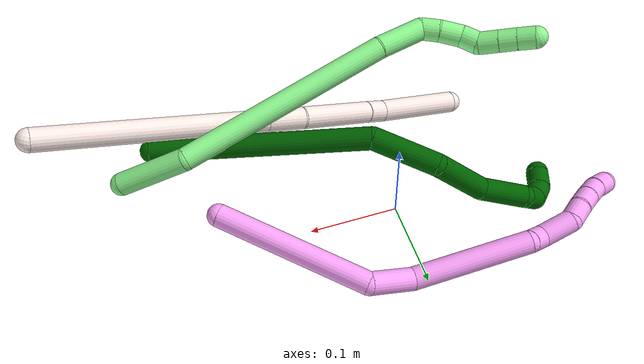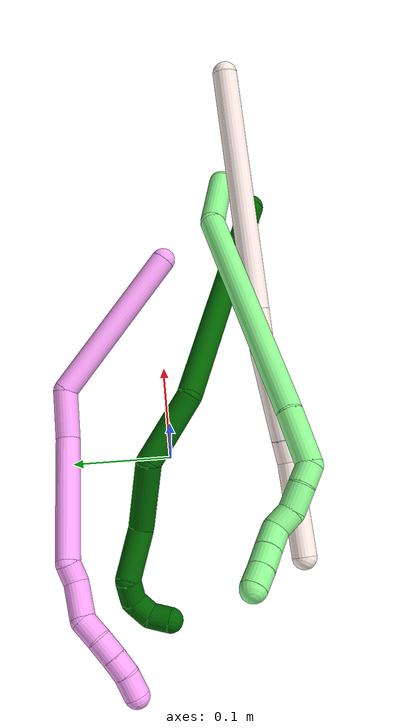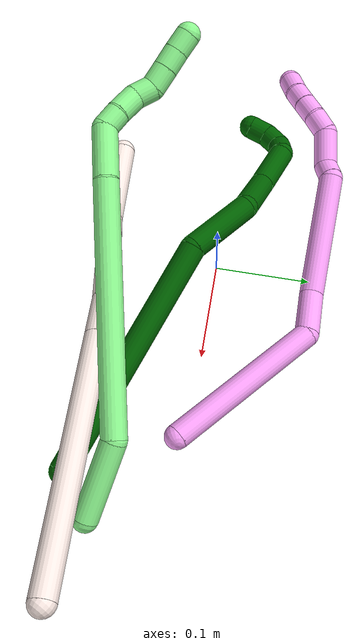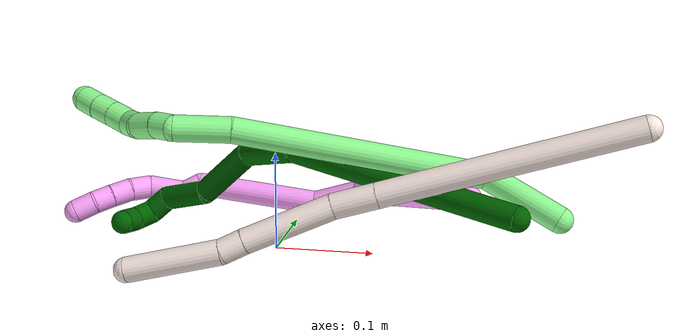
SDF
<sdf version="1.7">
 <world name="default">
  <model name="4">
   <static>0</static>
   <link name="4">
    <collision name="collision-cylinder-e_1_1_4">
     <pose>0.020566 -0.071524 0.042304 1.03668 0.242614 0.138837</pose>
     <geometry><cylinder><radius>0.0125</radius><length>0.171211</length></cylinder></geometry>
     <surface>
      <friction><ode><mu>1.16</mu><mu2>1.16</mu2><slip1>0</slip1><slip2>0</slip2></ode></friction>
      <contact><ode><kp>1e+06</kp><kd>1</kd><max_vel>0</max_vel><min_depth>0.001</min_depth></ode></contact>
     </surface>
    </collision>
    <visual name="visual-cylinder-e_1_1_4">
     <pose>0.020566 -0.071524 0.042304 1.03668 0.242614 0.138837</pose>
     <geometry><cylinder><radius>0.0125</radius><length>0.171211</length></cylinder></geometry>
     <material><ambient>1 0.65098 0.996078 1</ambient></material>
    </visual>
    <collision name="collision-cylinder-e_2_4_5">
     <pose>0.038539 -0.153543 0.107289 0.433327 -0.103378 -0.022775</pose>
     <geometry><cylinder><radius>0.0125</radius><length>0.050251</length></cylinder></geometry>
     <surface>
      <friction><ode><mu>1.16</mu><mu2>1.16</mu2><slip1>0</slip1><slip2>0</slip2></ode></friction>
      <contact><ode><kp>1e+06</kp><kd>1</kd><max_vel>0</max_vel><min_depth>0.001</min_depth></ode></contact>
     </surface>
    </collision>
    <visual name="visual-cylinder-e_2_4_5">
     <pose>0.038539 -0.153543 0.107289 0.433327 -0.103378 -0.022775</pose>
     <geometry><cylinder><radius>0.0125</radius><length>0.050251</length></cylinder></geometry>
     <material><ambient>1 0.65098 0.996078 1</ambient></material>
    </visual>
    <collision name="collision-cylinder-e_3_5_6">
     <pose>0.009601 -0.202887 0.176178 0.699114 -0.411479 -0.151855</pose>
     <geometry><cylinder><radius>0.0125</radius><length>0.131737</length></cylinder></geometry>
     <surface>
      <friction><ode><mu>1.16</mu><mu2>1.16</mu2><slip1>0</slip1><slip2>0</slip2></ode></friction>
      <contact><ode><kp>1e+06</kp><kd>1</kd><max_vel>0</max_vel><min_depth>0.001</min_depth></ode></contact>
     </surface>
    </collision>
    <visual name="visual-cylinder-e_3_5_6">
     <pose>0.009601 -0.202887 0.176178 0.699114 -0.411479 -0.151855</pose>
     <geometry><cylinder><radius>0.0125</radius><length>0.131737</length></cylinder></geometry>
     <material><ambient>1 0.65098 0.996078 1</ambient></material>
    </visual>
    <collision name="collision-cylinder-e_4_6_7">
     <pose>-0.018452 -0.242404 0.232587 0.065193 -0.165573 -0.005411</pose>
     <geometry><cylinder><radius>0.0125</radius><length>0.020727</length></cylinder></geometry>
     <surface>
      <friction><ode><mu>1.16</mu><mu2>1.16</mu2><slip1>0</slip1><slip2>0</slip2></ode></friction>
      <contact><ode><kp>1e+06</kp><kd>1</kd><max_vel>0</max_vel><min_depth>0.001</min_depth></ode></contact>
     </surface>
    </collision>
    <visual name="visual-cylinder-e_4_6_7">
     <pose>-0.018452 -0.242404 0.232587 0.065193 -0.165573 -0.005411</pose>
     <geometry><cylinder><radius>0.0125</radius><length>0.020727</length></cylinder></geometry>
     <material><ambient>1 0.65098 0.996078 1</ambient></material>
    </visual>
    <collision name="collision-cylinder-e_5_7_8">
     <pose>-0.030581 -0.252242 0.256398 0.592988 -0.565674 -0.177109</pose>
     <geometry><cylinder><radius>0.0125</radius><length>0.038884</length></cylinder></geometry>
     <surface>
      <friction><ode><mu>1.16</mu><mu2>1.16</mu2><slip1>0</slip1><slip2>0</slip2></ode></friction>
      <contact><ode><kp>1e+06</kp><kd>1</kd><max_vel>0</max_vel><min_depth>0.001</min_depth></ode></contact>
     </surface>
    </collision>
    <visual name="visual-cylinder-e_5_7_8">
     <pose>-0.030581 -0.252242 0.256398 0.592988 -0.565674 -0.177109</pose>
     <geometry><cylinder><radius>0.0125</radius><length>0.038884</length></cylinder></geometry>
     <material><ambient>1 0.65098 0.996078 1</ambient></material>
    </visual>
    <collision name="collision-cylinder-e_6_8_9">
     <pose>-0.047939 -0.260735 0.279189 -0.073879 -0.645871 0.024734</pose>
     <geometry><cylinder><radius>0.0125</radius><length>0.023055</length></cylinder></geometry>
     <surface>
      <friction><ode><mu>1.16</mu><mu2>1.16</mu2><slip1>0</slip1><slip2>0</slip2></ode></friction>
      <contact><ode><kp>1e+06</kp><kd>1</kd><max_vel>0</max_vel><min_depth>0.001</min_depth></ode></contact>
     </surface>
    </collision>
    <visual name="visual-cylinder-e_6_8_9">
     <pose>-0.047939 -0.260735 0.279189 -0.073879 -0.645871 0.024734</pose>
     <geometry><cylinder><radius>0.0125</radius><length>0.023055</length></cylinder></geometry>
     <material><ambient>1 0.65098 0.996078 1</ambient></material>
    </visual>
    <collision name="collision-cylinder-e_7_9_10">
     <pose>-0.059776 -0.258967 0.297999 -0.11256 -0.468054 0.02686</pose>
     <geometry><cylinder><radius>0.0125</radius><length>0.021717</length></cylinder></geometry>
     <surface>
      <friction><ode><mu>1.16</mu><mu2>1.16</mu2><slip1>0</slip1><slip2>0</slip2></ode></friction>
      <contact><ode><kp>1e+06</kp><kd>1</kd><max_vel>0</max_vel><min_depth>0.001</min_depth></ode></contact>
     </surface>
    </collision>
    <visual name="visual-cylinder-e_7_9_10">
     <pose>-0.059776 -0.258967 0.297999 -0.11256 -0.468054 0.02686</pose>
     <geometry><cylinder><radius>0.0125</radius><length>0.021717</length></cylinder></geometry>
     <material><ambient>1 0.65098 0.996078 1</ambient></material>
    </visual>
    <collision name="collision-cylinder-e_8_10_11">
     <pose>-0.068603 -0.257053 0.316859 -0.089147 -0.400895 0.018124</pose>
     <geometry><cylinder><radius>0.0125</radius><length>0.020132</length></cylinder></geometry>
     <surface>
      <friction><ode><mu>1.16</mu><mu2>1.16</mu2><slip1>0</slip1><slip2>0</slip2></ode></friction>
      <contact><ode><kp>1e+06</kp><kd>1</kd><max_vel>0</max_vel><min_depth>0.001</min_depth></ode></contact>
     </surface>
    </collision>
    <visual name="visual-cylinder-e_8_10_11">
     <pose>-0.068603 -0.257053 0.316859 -0.089147 -0.400895 0.018124</pose>
     <geometry><cylinder><radius>0.0125</radius><length>0.020132</length></cylinder></geometry>
     <material><ambient>1 0.65098 0.996078 1</ambient></material>
    </visual>
    <collision name="collision-cylinder-e_9_11_2">
     <pose>-0.075013 -0.25656 0.336949 0.030516 -0.224602 -0.003442</pose>
     <geometry><cylinder><radius>0.0125</radius><length>0.022288</length></cylinder></geometry>
     <surface>
      <friction><ode><mu>1.16</mu><mu2>1.16</mu2><slip1>0</slip1><slip2>0</slip2></ode></friction>
      <contact><ode><kp>1e+06</kp><kd>1</kd><max_vel>0</max_vel><min_depth>0.001</min_depth></ode></contact>
     </surface>
    </collision>
    <visual name="visual-cylinder-e_9_11_2">
     <pose>-0.075013 -0.25656 0.336949 0.030516 -0.224602 -0.003442</pose>
     <geometry><cylinder><radius>0.0125</radius><length>0.022288</length></cylinder></geometry>
     <material><ambient>1 0.65098 0.996078 1</ambient></material>
    </visual>
    <collision name="collision-sphere-2">
     <pose>-0.077495 -0.256891 0.347808 0 -0 0</pose>
     <geometry><sphere><radius>0.0125</radius></sphere></geometry>
     <surface>
      <friction><ode><mu>1.16</mu><mu2>1.16</mu2><slip1>0</slip1><slip2>0</slip2></ode></friction>
      <contact><ode><kp>1e+06</kp><kd>1</kd><max_vel>0</max_vel><min_depth>0.001</min_depth></ode></contact>
     </surface>
    </collision>
    <visual name="visual-sphere-2">
     <pose>-0.077495 -0.256891 0.347808 0 -0 0</pose>
     <geometry><sphere><radius>0.0125</radius></sphere></geometry>
     <material><ambient>1 0.65098 0.996078 1</ambient></material>
    </visual>
    <collision name="collision-sphere-11">
     <pose>-0.072531 -0.256228 0.32609 0 -0 0</pose>
     <geometry><sphere><radius>0.0125</radius></sphere></geometry>
     <surface>
      <friction><ode><mu>1.16</mu><mu2>1.16</mu2><slip1>0</slip1><slip2>0</slip2></ode></friction>
      <contact><ode><kp>1e+06</kp><kd>1</kd><max_vel>0</max_vel><min_depth>0.001</min_depth></ode></contact>
     </surface>
    </collision>
    <visual name="visual-sphere-11">
     <pose>-0.072531 -0.256228 0.32609 0 -0 0</pose>
     <geometry><sphere><radius>0.0125</radius></sphere></geometry>
     <material><ambient>1 0.65098 0.996078 1</ambient></material>
    </visual>
    <collision name="collision-sphere-10">
     <pose>-0.064675 -0.257878 0.307628 0 -0 0</pose>
     <geometry><sphere><radius>0.0125</radius></sphere></geometry>
     <surface>
      <friction><ode><mu>1.16</mu><mu2>1.16</mu2><slip1>0</slip1><slip2>0</slip2></ode></friction>
      <contact><ode><kp>1e+06</kp><kd>1</kd><max_vel>0</max_vel><min_depth>0.001</min_depth></ode></contact>
     </surface>
    </collision>
    <visual name="visual-sphere-10">
     <pose>-0.064675 -0.257878 0.307628 0 -0 0</pose>
     <geometry><sphere><radius>0.0125</radius></sphere></geometry>
     <material><ambient>1 0.65098 0.996078 1</ambient></material>
    </visual>
    <collision name="collision-sphere-9">
     <pose>-0.054878 -0.260055 0.28837 0 -0 0</pose>
     <geometry><sphere><radius>0.0125</radius></sphere></geometry>
     <surface>
      <friction><ode><mu>1.16</mu><mu2>1.16</mu2><slip1>0</slip1><slip2>0</slip2></ode></friction>
      <contact><ode><kp>1e+06</kp><kd>1</kd><max_vel>0</max_vel><min_depth>0.001</min_depth></ode></contact>
     </surface>
    </collision>
    <visual name="visual-sphere-9">
     <pose>-0.054878 -0.260055 0.28837 0 -0 0</pose>
     <geometry><sphere><radius>0.0125</radius></sphere></geometry>
     <material><ambient>1 0.65098 0.996078 1</ambient></material>
    </visual>
    <collision name="collision-sphere-4">
     <pose>0.041132 -0.143049 0.084607 0 -0 0</pose>
     <geometry><sphere><radius>0.0125</radius></sphere></geometry>
     <surface>
      <friction><ode><mu>1.16</mu><mu2>1.16</mu2><slip1>0</slip1><slip2>0</slip2></ode></friction>
      <contact><ode><kp>1e+06</kp><kd>1</kd><max_vel>0</max_vel><min_depth>0.001</min_depth></ode></contact>
     </surface>
    </collision>
    <visual name="visual-sphere-4">
     <pose>0.041132 -0.143049 0.084607 0 -0 0</pose>
     <geometry><sphere><radius>0.0125</radius></sphere></geometry>
     <material><ambient>1 0.65098 0.996078 1</ambient></material>
    </visual>
    <collision name="collision-sphere-1">
     <geometry><sphere><radius>0.0125</radius></sphere></geometry>
     <surface>
      <friction><ode><mu>1.16</mu><mu2>1.16</mu2><slip1>0</slip1><slip2>0</slip2></ode></friction>
      <contact><ode><kp>1e+06</kp><kd>1</kd><max_vel>0</max_vel><min_depth>0.001</min_depth></ode></contact>
     </surface>
    </collision>
    <visual name="visual-sphere-1">
     <geometry><sphere><radius>0.0125</radius></sphere></geometry>
     <material><ambient>1 0.65098 0.996078 1</ambient></material>
    </visual>
    <collision name="collision-sphere-8">
     <pose>-0.041001 -0.261414 0.270009 0 -0 0</pose>
     <geometry><sphere><radius>0.0125</radius></sphere></geometry>
     <surface>
      <friction><ode><mu>1.16</mu><mu2>1.16</mu2><slip1>0</slip1><slip2>0</slip2></ode></friction>
      <contact><ode><kp>1e+06</kp><kd>1</kd><max_vel>0</max_vel><min_depth>0.001</min_depth></ode></contact>
     </surface>
    </collision>
    <visual name="visual-sphere-8">
     <pose>-0.041001 -0.261414 0.270009 0 -0 0</pose>
     <geometry><sphere><radius>0.0125</radius></sphere></geometry>
     <material><ambient>1 0.65098 0.996078 1</ambient></material>
    </visual>
    <collision name="collision-sphere-5">
     <pose>0.035946 -0.164036 0.12997 0 -0 0</pose>
     <geometry><sphere><radius>0.0125</radius></sphere></geometry>
     <surface>
      <friction><ode><mu>1.16</mu><mu2>1.16</mu2><slip1>0</slip1><slip2>0</slip2></ode></friction>
      <contact><ode><kp>1e+06</kp><kd>1</kd><max_vel>0</max_vel><min_depth>0.001</min_depth></ode></contact>
     </surface>
    </collision>
    <visual name="visual-sphere-5">
     <pose>0.035946 -0.164036 0.12997 0 -0 0</pose>
     <geometry><sphere><radius>0.0125</radius></sphere></geometry>
     <material><ambient>1 0.65098 0.996078 1</ambient></material>
    </visual>
    <collision name="collision-sphere-6">
     <pose>-0.016744 -0.241738 0.222387 0 -0 0</pose>
     <geometry><sphere><radius>0.0125</radius></sphere></geometry>
     <surface>
      <friction><ode><mu>1.16</mu><mu2>1.16</mu2><slip1>0</slip1><slip2>0</slip2></ode></friction>
      <contact><ode><kp>1e+06</kp><kd>1</kd><max_vel>0</max_vel><min_depth>0.001</min_depth></ode></contact>
     </surface>
    </collision>
    <visual name="visual-sphere-6">
     <pose>-0.016744 -0.241738 0.222387 0 -0 0</pose>
     <geometry><sphere><radius>0.0125</radius></sphere></geometry>
     <material><ambient>1 0.65098 0.996078 1</ambient></material>
    </visual>
    <collision name="collision-sphere-7">
     <pose>-0.02016 -0.243069 0.242787 0 -0 0</pose>
     <geometry><sphere><radius>0.0125</radius></sphere></geometry>
     <surface>
      <friction><ode><mu>1.16</mu><mu2>1.16</mu2><slip1>0</slip1><slip2>0</slip2></ode></friction>
      <contact><ode><kp>1e+06</kp><kd>1</kd><max_vel>0</max_vel><min_depth>0.001</min_depth></ode></contact>
     </surface>
    </collision>
    <visual name="visual-sphere-7">
     <pose>-0.02016 -0.243069 0.242787 0 -0 0</pose>
     <geometry><sphere><radius>0.0125</radius></sphere></geometry>
     <material><ambient>1 0.65098 0.996078 1</ambient></material>
    </visual>
    <inertial>
     <pose>-0.000611 -0.168099 0.154861 0 -0 0</pose>
     <mass>0.5</mass>
     <inertia>
      <ixx>0.000634</ixx>
      <ixy>0</ixy>
      <ixz>0</ixz>
      <iyy>0.000416</iyy>
      <iyz>0</iyz>
      <izz>0.00049</izz>
     </inertia>
    </inertial>
   </link>
   <pose>0.196585 -0.007255 0.064909 -2.60204 0.842058 1.02569</pose>
  </model>
  <model name="6">
   <static>0</static>
   <link name="6">
    <collision name="collision-cylinder-e_1_1_4">
     <pose>-0.009968 0.037699 0.113872 -0.319708 -0.082908 0.013375</pose>
     <geometry><cylinder><radius>0.0125</radius><length>0.240726</length></cylinder></geometry>
     <surface>
      <friction><ode><mu>1.16</mu><mu2>1.16</mu2><slip1>0</slip1><slip2>0</slip2></ode></friction>
      <contact><ode><kp>1e+06</kp><kd>1</kd><max_vel>0</max_vel><min_depth>0.001</min_depth></ode></contact>
     </surface>
    </collision>
    <visual name="visual-cylinder-e_1_1_4">
     <pose>-0.009968 0.037699 0.113872 -0.319708 -0.082908 0.013375</pose>
     <geometry><cylinder><radius>0.0125</radius><length>0.240726</length></cylinder></geometry>
     <material><ambient>0 0.392157 0.003922 1</ambient></material>
    </visual>
    <collision name="collision-cylinder-e_2_4_5">
     <pose>-0.025748 0.100971 0.253809 -0.775852 -0.157848 0.064614</pose>
     <geometry><cylinder><radius>0.0125</radius><length>0.073951</length></cylinder></geometry>
     <surface>
      <friction><ode><mu>1.16</mu><mu2>1.16</mu2><slip1>0</slip1><slip2>0</slip2></ode></friction>
      <contact><ode><kp>1e+06</kp><kd>1</kd><max_vel>0</max_vel><min_depth>0.001</min_depth></ode></contact>
     </surface>
    </collision>
    <visual name="visual-cylinder-e_2_4_5">
     <pose>-0.025748 0.100971 0.253809 -0.775852 -0.157848 0.064614</pose>
     <geometry><cylinder><radius>0.0125</radius><length>0.073951</length></cylinder></geometry>
     <material><ambient>0 0.392157 0.003922 1</ambient></material>
    </visual>
    <collision name="collision-cylinder-e_3_5_6">
     <pose>-0.05533 0.147494 0.294082 -0.974897 -0.753978 0.413766</pose>
     <geometry><cylinder><radius>0.0125</radius><length>0.069448</length></cylinder></geometry>
     <surface>
      <friction><ode><mu>1.16</mu><mu2>1.16</mu2><slip1>0</slip1><slip2>0</slip2></ode></friction>
      <contact><ode><kp>1e+06</kp><kd>1</kd><max_vel>0</max_vel><min_depth>0.001</min_depth></ode></contact>
     </surface>
    </collision>
    <visual name="visual-cylinder-e_3_5_6">
     <pose>-0.05533 0.147494 0.294082 -0.974897 -0.753978 0.413766</pose>
     <geometry><cylinder><radius>0.0125</radius><length>0.069448</length></cylinder></geometry>
     <material><ambient>0 0.392157 0.003922 1</ambient></material>
    </visual>
    <collision name="collision-cylinder-e_4_6_7">
     <pose>-0.088987 0.181535 0.328088 -0.584211 -0.394676 0.120102</pose>
     <geometry><cylinder><radius>0.0125</radius><length>0.051425</length></cylinder></geometry>
     <surface>
      <friction><ode><mu>1.16</mu><mu2>1.16</mu2><slip1>0</slip1><slip2>0</slip2></ode></friction>
      <contact><ode><kp>1e+06</kp><kd>1</kd><max_vel>0</max_vel><min_depth>0.001</min_depth></ode></contact>
     </surface>
    </collision>
    <visual name="visual-cylinder-e_4_6_7">
     <pose>-0.088987 0.181535 0.328088 -0.584211 -0.394676 0.120102</pose>
     <geometry><cylinder><radius>0.0125</radius><length>0.051425</length></cylinder></geometry>
     <material><ambient>0 0.392157 0.003922 1</ambient></material>
    </visual>
    <collision name="collision-cylinder-e_5_7_8">
     <pose>-0.108833 0.198314 0.352297 -0.696481 -1.04728 0.413253</pose>
     <geometry><cylinder><radius>0.0125</radius><length>0.022998</length></cylinder></geometry>
     <surface>
      <friction><ode><mu>1.16</mu><mu2>1.16</mu2><slip1>0</slip1><slip2>0</slip2></ode></friction>
      <contact><ode><kp>1e+06</kp><kd>1</kd><max_vel>0</max_vel><min_depth>0.001</min_depth></ode></contact>
     </surface>
    </collision>
    <visual name="visual-cylinder-e_5_7_8">
     <pose>-0.108833 0.198314 0.352297 -0.696481 -1.04728 0.413253</pose>
     <geometry><cylinder><radius>0.0125</radius><length>0.022998</length></cylinder></geometry>
     <material><ambient>0 0.392157 0.003922 1</ambient></material>
    </visual>
    <collision name="collision-cylinder-e_6_8_9">
     <pose>-0.127574 0.198002 0.361057 0.743566 -0.978479 -0.409377</pose>
     <geometry><cylinder><radius>0.0125</radius><length>0.021171</length></cylinder></geometry>
     <surface>
      <friction><ode><mu>1.16</mu><mu2>1.16</mu2><slip1>0</slip1><slip2>0</slip2></ode></friction>
      <contact><ode><kp>1e+06</kp><kd>1</kd><max_vel>0</max_vel><min_depth>0.001</min_depth></ode></contact>
     </surface>
    </collision>
    <visual name="visual-cylinder-e_6_8_9">
     <pose>-0.127574 0.198002 0.361057 0.743566 -0.978479 -0.409377</pose>
     <geometry><cylinder><radius>0.0125</radius><length>0.021171</length></cylinder></geometry>
     <material><ambient>0 0.392157 0.003922 1</ambient></material>
    </visual>
    <collision name="collision-cylinder-e_7_9_2">
     <pose>-0.142287 0.18599 0.367268 1.34255 -0.624707 -0.502193</pose>
     <geometry><cylinder><radius>0.0125</radius><length>0.02028</length></cylinder></geometry>
     <surface>
      <friction><ode><mu>1.16</mu><mu2>1.16</mu2><slip1>0</slip1><slip2>0</slip2></ode></friction>
      <contact><ode><kp>1e+06</kp><kd>1</kd><max_vel>0</max_vel><min_depth>0.001</min_depth></ode></contact>
     </surface>
    </collision>
    <visual name="visual-cylinder-e_7_9_2">
     <pose>-0.142287 0.18599 0.367268 1.34255 -0.624707 -0.502193</pose>
     <geometry><cylinder><radius>0.0125</radius><length>0.02028</length></cylinder></geometry>
     <material><ambient>0 0.392157 0.003922 1</ambient></material>
    </visual>
    <collision name="collision-sphere-2">
     <pose>-0.148217 0.177978 0.369129 0 -0 0</pose>
     <geometry><sphere><radius>0.0125</radius></sphere></geometry>
     <surface>
      <friction><ode><mu>1.16</mu><mu2>1.16</mu2><slip1>0</slip1><slip2>0</slip2></ode></friction>
      <contact><ode><kp>1e+06</kp><kd>1</kd><max_vel>0</max_vel><min_depth>0.001</min_depth></ode></contact>
     </surface>
    </collision>
    <visual name="visual-sphere-2">
     <pose>-0.148217 0.177978 0.369129 0 -0 0</pose>
     <geometry><sphere><radius>0.0125</radius></sphere></geometry>
     <material><ambient>0 0.392157 0.003922 1</ambient></material>
    </visual>
    <collision name="collision-sphere-9">
     <pose>-0.136356 0.194001 0.365407 0 -0 0</pose>
     <geometry><sphere><radius>0.0125</radius></sphere></geometry>
     <surface>
      <friction><ode><mu>1.16</mu><mu2>1.16</mu2><slip1>0</slip1><slip2>0</slip2></ode></friction>
      <contact><ode><kp>1e+06</kp><kd>1</kd><max_vel>0</max_vel><min_depth>0.001</min_depth></ode></contact>
     </surface>
    </collision>
    <visual name="visual-sphere-9">
     <pose>-0.136356 0.194001 0.365407 0 -0 0</pose>
     <geometry><sphere><radius>0.0125</radius></sphere></geometry>
     <material><ambient>0 0.392157 0.003922 1</ambient></material>
    </visual>
    <collision name="collision-sphere-4">
     <pose>-0.019935 0.075398 0.227743 0 -0 0</pose>
     <geometry><sphere><radius>0.0125</radius></sphere></geometry>
     <surface>
      <friction><ode><mu>1.16</mu><mu2>1.16</mu2><slip1>0</slip1><slip2>0</slip2></ode></friction>
      <contact><ode><kp>1e+06</kp><kd>1</kd><max_vel>0</max_vel><min_depth>0.001</min_depth></ode></contact>
     </surface>
    </collision>
    <visual name="visual-sphere-4">
     <pose>-0.019935 0.075398 0.227743 0 -0 0</pose>
     <geometry><sphere><radius>0.0125</radius></sphere></geometry>
     <material><ambient>0 0.392157 0.003922 1</ambient></material>
    </visual>
    <collision name="collision-sphere-1">
     <geometry><sphere><radius>0.0125</radius></sphere></geometry>
     <surface>
      <friction><ode><mu>1.16</mu><mu2>1.16</mu2><slip1>0</slip1><slip2>0</slip2></ode></friction>
      <contact><ode><kp>1e+06</kp><kd>1</kd><max_vel>0</max_vel><min_depth>0.001</min_depth></ode></contact>
     </surface>
    </collision>
    <visual name="visual-sphere-1">
     <geometry><sphere><radius>0.0125</radius></sphere></geometry>
     <material><ambient>0 0.392157 0.003922 1</ambient></material>
    </visual>
    <collision name="collision-sphere-8">
     <pose>-0.118792 0.202002 0.356707 0 -0 0</pose>
     <geometry><sphere><radius>0.0125</radius></sphere></geometry>
     <surface>
      <friction><ode><mu>1.16</mu><mu2>1.16</mu2><slip1>0</slip1><slip2>0</slip2></ode></friction>
      <contact><ode><kp>1e+06</kp><kd>1</kd><max_vel>0</max_vel><min_depth>0.001</min_depth></ode></contact>
     </surface>
    </collision>
    <visual name="visual-sphere-8">
     <pose>-0.118792 0.202002 0.356707 0 -0 0</pose>
     <geometry><sphere><radius>0.0125</radius></sphere></geometry>
     <material><ambient>0 0.392157 0.003922 1</ambient></material>
    </visual>
    <collision name="collision-sphere-5">
     <pose>-0.03156 0.126544 0.279875 0 -0 0</pose>
     <geometry><sphere><radius>0.0125</radius></sphere></geometry>
     <surface>
      <friction><ode><mu>1.16</mu><mu2>1.16</mu2><slip1>0</slip1><slip2>0</slip2></ode></friction>
      <contact><ode><kp>1e+06</kp><kd>1</kd><max_vel>0</max_vel><min_depth>0.001</min_depth></ode></contact>
     </surface>
    </collision>
    <visual name="visual-sphere-5">
     <pose>-0.03156 0.126544 0.279875 0 -0 0</pose>
     <geometry><sphere><radius>0.0125</radius></sphere></geometry>
     <material><ambient>0 0.392157 0.003922 1</ambient></material>
    </visual>
    <collision name="collision-sphere-6">
     <pose>-0.0791 0.168444 0.308288 0 -0 0</pose>
     <geometry><sphere><radius>0.0125</radius></sphere></geometry>
     <surface>
      <friction><ode><mu>1.16</mu><mu2>1.16</mu2><slip1>0</slip1><slip2>0</slip2></ode></friction>
      <contact><ode><kp>1e+06</kp><kd>1</kd><max_vel>0</max_vel><min_depth>0.001</min_depth></ode></contact>
     </surface>
    </collision>
    <visual name="visual-sphere-6">
     <pose>-0.0791 0.168444 0.308288 0 -0 0</pose>
     <geometry><sphere><radius>0.0125</radius></sphere></geometry>
     <material><ambient>0 0.392157 0.003922 1</ambient></material>
    </visual>
    <collision name="collision-sphere-7">
     <pose>-0.098874 0.194626 0.347887 0 -0 0</pose>
     <geometry><sphere><radius>0.0125</radius></sphere></geometry>
     <surface>
      <friction><ode><mu>1.16</mu><mu2>1.16</mu2><slip1>0</slip1><slip2>0</slip2></ode></friction>
      <contact><ode><kp>1e+06</kp><kd>1</kd><max_vel>0</max_vel><min_depth>0.001</min_depth></ode></contact>
     </surface>
    </collision>
    <visual name="visual-sphere-7">
     <pose>-0.098874 0.194626 0.347887 0 -0 0</pose>
     <geometry><sphere><radius>0.0125</radius></sphere></geometry>
     <material><ambient>0 0.392157 0.003922 1</ambient></material>
    </visual>
    <inertial>
     <pose>-0.041623 0.097291 0.213342 0 -0 0</pose>
     <mass>0.5</mass>
     <inertia>
      <ixx>0.001256</ixx>
      <ixy>0</ixy>
      <ixz>0</ixz>
      <iyy>0.001219</iyy>
      <iyz>0</iyz>
      <izz>-0.000255</izz>
     </inertia>
    </inertial>
   </link>
   <pose>0.246265 -0.104923 0.07681 -0.964356 -0.80539 0.94151</pose>
  </model>
  <model name="11">
   <static>0</static>
   <link name="11">
    <collision name="collision-cylinder-e_1_1_4">
     <pose>-0.050518 -0.035437 0.108063 0.316884 -0.418034 -0.067758</pose>
     <geometry><cylinder><radius>0.0125</radius><length>0.248881</length></cylinder></geometry>
     <surface>
      <friction><ode><mu>1.16</mu><mu2>1.16</mu2><slip1>0</slip1><slip2>0</slip2></ode></friction>
      <contact><ode><kp>1e+06</kp><kd>1</kd><max_vel>0</max_vel><min_depth>0.001</min_depth></ode></contact>
     </surface>
    </collision>
    <visual name="visual-cylinder-e_1_1_4">
     <pose>-0.050518 -0.035437 0.108063 0.316884 -0.418034 -0.067758</pose>
     <geometry><cylinder><radius>0.0125</radius><length>0.248881</length></cylinder></geometry>
     <material><ambient>1 0.933333 0.909804 1</ambient></material>
    </visual>
    <collision name="collision-cylinder-e_2_4_5">
     <pose>-0.109747 -0.077008 0.234822 0.316975 -0.416741 -0.067562</pose>
     <geometry><cylinder><radius>0.0125</radius><length>0.043039</length></cylinder></geometry>
     <surface>
      <friction><ode><mu>1.16</mu><mu2>1.16</mu2><slip1>0</slip1><slip2>0</slip2></ode></friction>
      <contact><ode><kp>1e+06</kp><kd>1</kd><max_vel>0</max_vel><min_depth>0.001</min_depth></ode></contact>
     </surface>
    </collision>
    <visual name="visual-cylinder-e_2_4_5">
     <pose>-0.109747 -0.077008 0.234822 0.316975 -0.416741 -0.067562</pose>
     <geometry><cylinder><radius>0.0125</radius><length>0.043039</length></cylinder></geometry>
     <material><ambient>1 0.933333 0.909804 1</ambient></material>
    </visual>
    <collision name="collision-cylinder-e_3_5_6">
     <pose>-0.142883 -0.095268 0.288969 0.329599 -0.577721 -0.098764</pose>
     <geometry><cylinder><radius>0.0125</radius><length>0.089448</length></cylinder></geometry>
     <surface>
      <friction><ode><mu>1.16</mu><mu2>1.16</mu2><slip1>0</slip1><slip2>0</slip2></ode></friction>
      <contact><ode><kp>1e+06</kp><kd>1</kd><max_vel>0</max_vel><min_depth>0.001</min_depth></ode></contact>
     </surface>
    </collision>
    <visual name="visual-cylinder-e_3_5_6">
     <pose>-0.142883 -0.095268 0.288969 0.329599 -0.577721 -0.098764</pose>
     <geometry><cylinder><radius>0.0125</radius><length>0.089448</length></cylinder></geometry>
     <material><ambient>1 0.933333 0.909804 1</ambient></material>
    </visual>
    <collision name="collision-cylinder-e_4_6_7">
     <pose>-0.174343 -0.11034 0.333541 0.312284 -0.63309 -0.10304</pose>
     <geometry><cylinder><radius>0.0125</radius><length>0.023783</length></cylinder></geometry>
     <surface>
      <friction><ode><mu>1.16</mu><mu2>1.16</mu2><slip1>0</slip1><slip2>0</slip2></ode></friction>
      <contact><ode><kp>1e+06</kp><kd>1</kd><max_vel>0</max_vel><min_depth>0.001</min_depth></ode></contact>
     </surface>
    </collision>
    <visual name="visual-cylinder-e_4_6_7">
     <pose>-0.174343 -0.11034 0.333541 0.312284 -0.63309 -0.10304</pose>
     <geometry><cylinder><radius>0.0125</radius><length>0.023783</length></cylinder></geometry>
     <material><ambient>1 0.933333 0.909804 1</ambient></material>
    </visual>
    <collision name="collision-cylinder-e_5_7_2">
     <pose>-0.199133 -0.129059 0.383714 0.366859 -0.383728 -0.072043</pose>
     <geometry><cylinder><radius>0.0125</radius><length>0.094849</length></cylinder></geometry>
     <surface>
      <friction><ode><mu>1.16</mu><mu2>1.16</mu2><slip1>0</slip1><slip2>0</slip2></ode></friction>
      <contact><ode><kp>1e+06</kp><kd>1</kd><max_vel>0</max_vel><min_depth>0.001</min_depth></ode></contact>
     </surface>
    </collision>
    <visual name="visual-cylinder-e_5_7_2">
     <pose>-0.199133 -0.129059 0.383714 0.366859 -0.383728 -0.072043</pose>
     <geometry><cylinder><radius>0.0125</radius><length>0.094849</length></cylinder></geometry>
     <material><ambient>1 0.933333 0.909804 1</ambient></material>
    </visual>
    <collision name="collision-sphere-2">
     <pose>-0.216888 -0.144832 0.424763 0 -0 0</pose>
     <geometry><sphere><radius>0.0125</radius></sphere></geometry>
     <surface>
      <friction><ode><mu>1.16</mu><mu2>1.16</mu2><slip1>0</slip1><slip2>0</slip2></ode></friction>
      <contact><ode><kp>1e+06</kp><kd>1</kd><max_vel>0</max_vel><min_depth>0.001</min_depth></ode></contact>
     </surface>
    </collision>
    <visual name="visual-sphere-2">
     <pose>-0.216888 -0.144832 0.424763 0 -0 0</pose>
     <geometry><sphere><radius>0.0125</radius></sphere></geometry>
     <material><ambient>1 0.933333 0.909804 1</ambient></material>
    </visual>
    <collision name="collision-sphere-7">
     <pose>-0.181378 -0.113285 0.342665 0 -0 0</pose>
     <geometry><sphere><radius>0.0125</radius></sphere></geometry>
     <surface>
      <friction><ode><mu>1.16</mu><mu2>1.16</mu2><slip1>0</slip1><slip2>0</slip2></ode></friction>
      <contact><ode><kp>1e+06</kp><kd>1</kd><max_vel>0</max_vel><min_depth>0.001</min_depth></ode></contact>
     </surface>
    </collision>
    <visual name="visual-sphere-7">
     <pose>-0.181378 -0.113285 0.342665 0 -0 0</pose>
     <geometry><sphere><radius>0.0125</radius></sphere></geometry>
     <material><ambient>1 0.933333 0.909804 1</ambient></material>
    </visual>
    <collision name="collision-sphere-6">
     <pose>-0.167307 -0.107394 0.324418 0 -0 0</pose>
     <geometry><sphere><radius>0.0125</radius></sphere></geometry>
     <surface>
      <friction><ode><mu>1.16</mu><mu2>1.16</mu2><slip1>0</slip1><slip2>0</slip2></ode></friction>
      <contact><ode><kp>1e+06</kp><kd>1</kd><max_vel>0</max_vel><min_depth>0.001</min_depth></ode></contact>
     </surface>
    </collision>
    <visual name="visual-sphere-6">
     <pose>-0.167307 -0.107394 0.324418 0 -0 0</pose>
     <geometry><sphere><radius>0.0125</radius></sphere></geometry>
     <material><ambient>1 0.933333 0.909804 1</ambient></material>
    </visual>
    <collision name="collision-sphere-5">
     <pose>-0.118458 -0.083142 0.25352 0 -0 0</pose>
     <geometry><sphere><radius>0.0125</radius></sphere></geometry>
     <surface>
      <friction><ode><mu>1.16</mu><mu2>1.16</mu2><slip1>0</slip1><slip2>0</slip2></ode></friction>
      <contact><ode><kp>1e+06</kp><kd>1</kd><max_vel>0</max_vel><min_depth>0.001</min_depth></ode></contact>
     </surface>
    </collision>
    <visual name="visual-sphere-5">
     <pose>-0.118458 -0.083142 0.25352 0 -0 0</pose>
     <geometry><sphere><radius>0.0125</radius></sphere></geometry>
     <material><ambient>1 0.933333 0.909804 1</ambient></material>
    </visual>
    <collision name="collision-sphere-1">
     <geometry><sphere><radius>0.0125</radius></sphere></geometry>
     <surface>
      <friction><ode><mu>1.16</mu><mu2>1.16</mu2><slip1>0</slip1><slip2>0</slip2></ode></friction>
      <contact><ode><kp>1e+06</kp><kd>1</kd><max_vel>0</max_vel><min_depth>0.001</min_depth></ode></contact>
     </surface>
    </collision>
    <visual name="visual-sphere-1">
     <geometry><sphere><radius>0.0125</radius></sphere></geometry>
     <material><ambient>1 0.933333 0.909804 1</ambient></material>
    </visual>
    <collision name="collision-sphere-4">
     <pose>-0.101037 -0.070875 0.216125 0 -0 0</pose>
     <geometry><sphere><radius>0.0125</radius></sphere></geometry>
     <surface>
      <friction><ode><mu>1.16</mu><mu2>1.16</mu2><slip1>0</slip1><slip2>0</slip2></ode></friction>
      <contact><ode><kp>1e+06</kp><kd>1</kd><max_vel>0</max_vel><min_depth>0.001</min_depth></ode></contact>
     </surface>
    </collision>
    <visual name="visual-sphere-4">
     <pose>-0.101037 -0.070875 0.216125 0 -0 0</pose>
     <geometry><sphere><radius>0.0125</radius></sphere></geometry>
     <material><ambient>1 0.933333 0.909804 1</ambient></material>
    </visual>
    <inertial>
     <pose>-0.106222 -0.071042 0.214353 0 -0 0</pose>
     <mass>0.5</mass>
     <inertia>
      <ixx>0.001203</ixx>
      <ixy>0</ixy>
      <ixz>0</ixz>
      <iyy>0.001277</iyy>
      <iyz>0</iyz>
      <izz>0.001039</izz>
     </inertia>
    </inertial>
   </link>
   <pose>0.357043 -0.084074 0.159845 -1.84984 -0.850499 1.31122</pose>
  </model>
  <model name="13">
   <static>0</static>
   <link name="13">
    <collision name="collision-cylinder-e_1_1_4">
     <pose>-0.000525 -0.000541 0.039299 0.013765 -0.013354 -9.2e-05</pose>
     <geometry><cylinder><radius>0.0125</radius><length>0.078612</length></cylinder></geometry>
     <surface>
      <friction><ode><mu>1.16</mu><mu2>1.16</mu2><slip1>0</slip1><slip2>0</slip2></ode></friction>
      <contact><ode><kp>1e+06</kp><kd>1</kd><max_vel>0</max_vel><min_depth>0.001</min_depth></ode></contact>
     </surface>
    </collision>
    <visual name="visual-cylinder-e_1_1_4">
     <pose>-0.000525 -0.000541 0.039299 0.013765 -0.013354 -9.2e-05</pose>
     <geometry><cylinder><radius>0.0125</radius><length>0.078612</length></cylinder></geometry>
     <material><ambient>0.564706 0.984314 0.572549 1</ambient></material>
    </visual>
    <collision name="collision-cylinder-e_2_4_5">
     <pose>-0.007742 -0.058296 0.183674 0.49861 -0.05588 -0.014231</pose>
     <geometry><cylinder><radius>0.0125</radius><length>0.23966</length></cylinder></geometry>
     <surface>
      <friction><ode><mu>1.16</mu><mu2>1.16</mu2><slip1>0</slip1><slip2>0</slip2></ode></friction>
      <contact><ode><kp>1e+06</kp><kd>1</kd><max_vel>0</max_vel><min_depth>0.001</min_depth></ode></contact>
     </surface>
    </collision>
    <visual name="visual-cylinder-e_2_4_5">
     <pose>-0.007742 -0.058296 0.183674 0.49861 -0.05588 -0.014231</pose>
     <geometry><cylinder><radius>0.0125</radius><length>0.23966</length></cylinder></geometry>
     <material><ambient>0.564706 0.984314 0.572549 1</ambient></material>
    </visual>
    <collision name="collision-cylinder-e_3_5_6">
     <pose>-0.019276 -0.13011 0.310793 0.58504 -0.181077 -0.054669</pose>
     <geometry><cylinder><radius>0.0125</radius><length>0.053758</length></cylinder></geometry>
     <surface>
      <friction><ode><mu>1.16</mu><mu2>1.16</mu2><slip1>0</slip1><slip2>0</slip2></ode></friction>
      <contact><ode><kp>1e+06</kp><kd>1</kd><max_vel>0</max_vel><min_depth>0.001</min_depth></ode></contact>
     </surface>
    </collision>
    <visual name="visual-cylinder-e_3_5_6">
     <pose>-0.019276 -0.13011 0.310793 0.58504 -0.181077 -0.054669</pose>
     <geometry><cylinder><radius>0.0125</radius><length>0.053758</length></cylinder></geometry>
     <material><ambient>0.564706 0.984314 0.572549 1</ambient></material>
    </visual>
    <collision name="collision-cylinder-e_4_6_7">
     <pose>-0.029145 -0.144157 0.341605 -0.063104 -0.519771 0.016784</pose>
     <geometry><cylinder><radius>0.0125</radius><length>0.02025</length></cylinder></geometry>
     <surface>
      <friction><ode><mu>1.16</mu><mu2>1.16</mu2><slip1>0</slip1><slip2>0</slip2></ode></friction>
      <contact><ode><kp>1e+06</kp><kd>1</kd><max_vel>0</max_vel><min_depth>0.001</min_depth></ode></contact>
     </surface>
    </collision>
    <visual name="visual-cylinder-e_4_6_7">
     <pose>-0.029145 -0.144157 0.341605 -0.063104 -0.519771 0.016784</pose>
     <geometry><cylinder><radius>0.0125</radius><length>0.02025</length></cylinder></geometry>
     <material><ambient>0.564706 0.984314 0.572549 1</ambient></material>
    </visual>
    <collision name="collision-cylinder-e_5_7_8">
     <pose>-0.041994 -0.143463 0.36023 -0.014178 -0.670713 0.004941</pose>
     <geometry><cylinder><radius>0.0125</radius><length>0.025163</length></cylinder></geometry>
     <surface>
      <friction><ode><mu>1.16</mu><mu2>1.16</mu2><slip1>0</slip1><slip2>0</slip2></ode></friction>
      <contact><ode><kp>1e+06</kp><kd>1</kd><max_vel>0</max_vel><min_depth>0.001</min_depth></ode></contact>
     </surface>
    </collision>
    <visual name="visual-cylinder-e_5_7_8">
     <pose>-0.041994 -0.143463 0.36023 -0.014178 -0.670713 0.004941</pose>
     <geometry><cylinder><radius>0.0125</radius><length>0.025163</length></cylinder></geometry>
     <material><ambient>0.564706 0.984314 0.572549 1</ambient></material>
    </visual>
    <collision name="collision-cylinder-e_6_8_9">
     <pose>-0.055952 -0.139514 0.377342 -0.483366 -0.642815 0.163779</pose>
     <geometry><cylinder><radius>0.0125</radius><length>0.020478</length></cylinder></geometry>
     <surface>
      <friction><ode><mu>1.16</mu><mu2>1.16</mu2><slip1>0</slip1><slip2>0</slip2></ode></friction>
      <contact><ode><kp>1e+06</kp><kd>1</kd><max_vel>0</max_vel><min_depth>0.001</min_depth></ode></contact>
     </surface>
    </collision>
    <visual name="visual-cylinder-e_6_8_9">
     <pose>-0.055952 -0.139514 0.377342 -0.483366 -0.642815 0.163779</pose>
     <geometry><cylinder><radius>0.0125</radius><length>0.020478</length></cylinder></geometry>
     <material><ambient>0.564706 0.984314 0.572549 1</ambient></material>
    </visual>
    <collision name="collision-cylinder-e_7_9_10">
     <pose>-0.064745 -0.134404 0.395227 -0.121815 -0.243143 0.014901</pose>
     <geometry><cylinder><radius>0.0125</radius><length>0.022064</length></cylinder></geometry>
     <surface>
      <friction><ode><mu>1.16</mu><mu2>1.16</mu2><slip1>0</slip1><slip2>0</slip2></ode></friction>
      <contact><ode><kp>1e+06</kp><kd>1</kd><max_vel>0</max_vel><min_depth>0.001</min_depth></ode></contact>
     </surface>
    </collision>
    <visual name="visual-cylinder-e_7_9_10">
     <pose>-0.064745 -0.134404 0.395227 -0.121815 -0.243143 0.014901</pose>
     <geometry><cylinder><radius>0.0125</radius><length>0.022064</length></cylinder></geometry>
     <material><ambient>0.564706 0.984314 0.572549 1</ambient></material>
    </visual>
    <collision name="collision-cylinder-e_8_10_11">
     <pose>-0.069917 -0.13215 0.415488 -0.098615 -0.254261 0.012615</pose>
     <geometry><cylinder><radius>0.0125</radius><length>0.020003</length></cylinder></geometry>
     <surface>
      <friction><ode><mu>1.16</mu><mu2>1.16</mu2><slip1>0</slip1><slip2>0</slip2></ode></friction>
      <contact><ode><kp>1e+06</kp><kd>1</kd><max_vel>0</max_vel><min_depth>0.001</min_depth></ode></contact>
     </surface>
    </collision>
    <visual name="visual-cylinder-e_8_10_11">
     <pose>-0.069917 -0.13215 0.415488 -0.098615 -0.254261 0.012615</pose>
     <geometry><cylinder><radius>0.0125</radius><length>0.020003</length></cylinder></geometry>
     <material><ambient>0.564706 0.984314 0.572549 1</ambient></material>
    </visual>
    <collision name="collision-cylinder-e_9_11_2">
     <pose>-0.074961 -0.129812 0.434703 -0.143529 -0.255394 0.01846</pose>
     <geometry><cylinder><radius>0.0125</radius><length>0.020012</length></cylinder></geometry>
     <surface>
      <friction><ode><mu>1.16</mu><mu2>1.16</mu2><slip1>0</slip1><slip2>0</slip2></ode></friction>
      <contact><ode><kp>1e+06</kp><kd>1</kd><max_vel>0</max_vel><min_depth>0.001</min_depth></ode></contact>
     </surface>
    </collision>
    <visual name="visual-cylinder-e_9_11_2">
     <pose>-0.074961 -0.129812 0.434703 -0.143529 -0.255394 0.01846</pose>
     <geometry><cylinder><radius>0.0125</radius><length>0.020012</length></cylinder></geometry>
     <material><ambient>0.564706 0.984314 0.572549 1</ambient></material>
    </visual>
    <collision name="collision-sphere-2">
     <pose>-0.077488 -0.128428 0.444285 0 -0 0</pose>
     <geometry><sphere><radius>0.0125</radius></sphere></geometry>
     <surface>
      <friction><ode><mu>1.16</mu><mu2>1.16</mu2><slip1>0</slip1><slip2>0</slip2></ode></friction>
      <contact><ode><kp>1e+06</kp><kd>1</kd><max_vel>0</max_vel><min_depth>0.001</min_depth></ode></contact>
     </surface>
    </collision>
    <visual name="visual-sphere-2">
     <pose>-0.077488 -0.128428 0.444285 0 -0 0</pose>
     <geometry><sphere><radius>0.0125</radius></sphere></geometry>
     <material><ambient>0.564706 0.984314 0.572549 1</ambient></material>
    </visual>
    <collision name="collision-sphere-11">
     <pose>-0.072433 -0.131197 0.425121 0 -0 0</pose>
     <geometry><sphere><radius>0.0125</radius></sphere></geometry>
     <surface>
      <friction><ode><mu>1.16</mu><mu2>1.16</mu2><slip1>0</slip1><slip2>0</slip2></ode></friction>
      <contact><ode><kp>1e+06</kp><kd>1</kd><max_vel>0</max_vel><min_depth>0.001</min_depth></ode></contact>
     </surface>
    </collision>
    <visual name="visual-sphere-11">
     <pose>-0.072433 -0.131197 0.425121 0 -0 0</pose>
     <geometry><sphere><radius>0.0125</radius></sphere></geometry>
     <material><ambient>0.564706 0.984314 0.572549 1</ambient></material>
    </visual>
    <collision name="collision-sphere-10">
     <pose>-0.067401 -0.133103 0.405855 0 -0 0</pose>
     <geometry><sphere><radius>0.0125</radius></sphere></geometry>
     <surface>
      <friction><ode><mu>1.16</mu><mu2>1.16</mu2><slip1>0</slip1><slip2>0</slip2></ode></friction>
      <contact><ode><kp>1e+06</kp><kd>1</kd><max_vel>0</max_vel><min_depth>0.001</min_depth></ode></contact>
     </surface>
    </collision>
    <visual name="visual-sphere-10">
     <pose>-0.067401 -0.133103 0.405855 0 -0 0</pose>
     <geometry><sphere><radius>0.0125</radius></sphere></geometry>
     <material><ambient>0.564706 0.984314 0.572549 1</ambient></material>
    </visual>
    <collision name="collision-sphere-9">
     <pose>-0.062089 -0.135705 0.384599 0 -0 0</pose>
     <geometry><sphere><radius>0.0125</radius></sphere></geometry>
     <surface>
      <friction><ode><mu>1.16</mu><mu2>1.16</mu2><slip1>0</slip1><slip2>0</slip2></ode></friction>
      <contact><ode><kp>1e+06</kp><kd>1</kd><max_vel>0</max_vel><min_depth>0.001</min_depth></ode></contact>
     </surface>
    </collision>
    <visual name="visual-sphere-9">
     <pose>-0.062089 -0.135705 0.384599 0 -0 0</pose>
     <geometry><sphere><radius>0.0125</radius></sphere></geometry>
     <material><ambient>0.564706 0.984314 0.572549 1</ambient></material>
    </visual>
    <collision name="collision-sphere-4">
     <pose>-0.00105 -0.001082 0.078598 0 -0 0</pose>
     <geometry><sphere><radius>0.0125</radius></sphere></geometry>
     <surface>
      <friction><ode><mu>1.16</mu><mu2>1.16</mu2><slip1>0</slip1><slip2>0</slip2></ode></friction>
      <contact><ode><kp>1e+06</kp><kd>1</kd><max_vel>0</max_vel><min_depth>0.001</min_depth></ode></contact>
     </surface>
    </collision>
    <visual name="visual-sphere-4">
     <pose>-0.00105 -0.001082 0.078598 0 -0 0</pose>
     <geometry><sphere><radius>0.0125</radius></sphere></geometry>
     <material><ambient>0.564706 0.984314 0.572549 1</ambient></material>
    </visual>
    <collision name="collision-sphere-1">
     <geometry><sphere><radius>0.0125</radius></sphere></geometry>
     <surface>
      <friction><ode><mu>1.16</mu><mu2>1.16</mu2><slip1>0</slip1><slip2>0</slip2></ode></friction>
      <contact><ode><kp>1e+06</kp><kd>1</kd><max_vel>0</max_vel><min_depth>0.001</min_depth></ode></contact>
     </surface>
    </collision>
    <visual name="visual-sphere-1">
     <geometry><sphere><radius>0.0125</radius></sphere></geometry>
     <material><ambient>0.564706 0.984314 0.572549 1</ambient></material>
    </visual>
    <collision name="collision-sphere-8">
     <pose>-0.049814 -0.143323 0.370085 0 -0 0</pose>
     <geometry><sphere><radius>0.0125</radius></sphere></geometry>
     <surface>
      <friction><ode><mu>1.16</mu><mu2>1.16</mu2><slip1>0</slip1><slip2>0</slip2></ode></friction>
      <contact><ode><kp>1e+06</kp><kd>1</kd><max_vel>0</max_vel><min_depth>0.001</min_depth></ode></contact>
     </surface>
    </collision>
    <visual name="visual-sphere-8">
     <pose>-0.049814 -0.143323 0.370085 0 -0 0</pose>
     <geometry><sphere><radius>0.0125</radius></sphere></geometry>
     <material><ambient>0.564706 0.984314 0.572549 1</ambient></material>
    </visual>
    <collision name="collision-sphere-5">
     <pose>-0.014435 -0.11551 0.28875 0 -0 0</pose>
     <geometry><sphere><radius>0.0125</radius></sphere></geometry>
     <surface>
      <friction><ode><mu>1.16</mu><mu2>1.16</mu2><slip1>0</slip1><slip2>0</slip2></ode></friction>
      <contact><ode><kp>1e+06</kp><kd>1</kd><max_vel>0</max_vel><min_depth>0.001</min_depth></ode></contact>
     </surface>
    </collision>
    <visual name="visual-sphere-5">
     <pose>-0.014435 -0.11551 0.28875 0 -0 0</pose>
     <geometry><sphere><radius>0.0125</radius></sphere></geometry>
     <material><ambient>0.564706 0.984314 0.572549 1</ambient></material>
    </visual>
    <collision name="collision-sphere-6">
     <pose>-0.024116 -0.144711 0.332835 0 -0 0</pose>
     <geometry><sphere><radius>0.0125</radius></sphere></geometry>
     <surface>
      <friction><ode><mu>1.16</mu><mu2>1.16</mu2><slip1>0</slip1><slip2>0</slip2></ode></friction>
      <contact><ode><kp>1e+06</kp><kd>1</kd><max_vel>0</max_vel><min_depth>0.001</min_depth></ode></contact>
     </surface>
    </collision>
    <visual name="visual-sphere-6">
     <pose>-0.024116 -0.144711 0.332835 0 -0 0</pose>
     <geometry><sphere><radius>0.0125</radius></sphere></geometry>
     <material><ambient>0.564706 0.984314 0.572549 1</ambient></material>
    </visual>
    <collision name="collision-sphere-7">
     <pose>-0.034174 -0.143603 0.350375 0 -0 0</pose>
     <geometry><sphere><radius>0.0125</radius></sphere></geometry>
     <surface>
      <friction><ode><mu>1.16</mu><mu2>1.16</mu2><slip1>0</slip1><slip2>0</slip2></ode></friction>
      <contact><ode><kp>1e+06</kp><kd>1</kd><max_vel>0</max_vel><min_depth>0.001</min_depth></ode></contact>
     </surface>
    </collision>
    <visual name="visual-sphere-7">
     <pose>-0.034174 -0.143603 0.350375 0 -0 0</pose>
     <geometry><sphere><radius>0.0125</radius></sphere></geometry>
     <material><ambient>0.564706 0.984314 0.572549 1</ambient></material>
    </visual>
    <inertial>
     <pose>-0.020106 -0.077202 0.226512 0 -0 0</pose>
     <mass>0.5</mass>
     <inertia>
      <ixx>0.001199</ixx>
      <ixy>0</ixy>
      <ixz>0</ixz>
      <iyy>0.001055</iyy>
      <iyz>0</iyz>
      <izz>0.000667</izz>
     </inertia>
    </inertial>
   </link>
   <pose>0.284385 -0.076462 0.069228 0.632758 -0.984584 -0.963095</pose>
  </model>
 </world>
</sdf>
